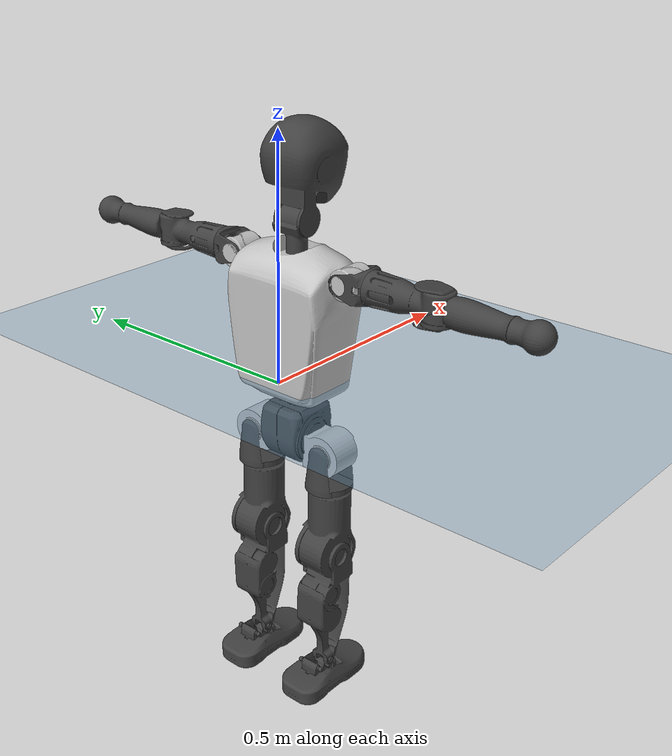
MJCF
<mujoco model="T1">
  <compiler angle="radian" assetdir="assets" balanceinertia="true" inertiafromgeom="false"/>

  <option timestep="0.005" density="1.2" viscosity="2e-05"/>

  <size nkey="1"/>

  <visual>
    <quality shadowsize="8192"/>
    <map shadowclip="0.5"/>
  </visual>

  <default>
    <default class="/">
      <joint armature="0.01" damping="0.01" frictionloss="0.1"/>
      <geom contype="0" conaffinity="0" group="1" solref="-1000 -80"/>
      <site size="0.01 0.005 0.005" group="5"/>
      <general forcelimited="true" biastype="affine" gainprm="25" biasprm="0 -25 -0.6"/>
      <default class="t1">
        <geom rgba="0.25 0.25 0.25 1"/>
        <default class="visual">
          <geom type="mesh" group="2"/>
        </default>
        <default class="collision">
          <geom group="3"/>
        </default>
        <default class="foot">
          <geom size="0.1115 0.05 0.015" type="box" condim="6" group="4" priority="1" solimp="0.015 1 0.015"/>
        </default>
        <default class="reward_collision_sphere">
          <geom group="5" rgba="1 0 0 1"/>
        </default>
      </default>
    </default>
  </default>

  <asset>
    <texture type="skybox" colorspace="auto" name="//unnamed_texture_0" builtin="gradient" rgb1="0.95 0.95 0.95" rgb2="0.95 0.95 0.95" width="100" height="600"/>
    <texture type="2d" colorspace="auto" name="texplane" builtin="checker" rgb1="0.345 0.575 0.748" rgb2="0.345 0.575 0.748" markrgb="1 1 1" width="512" height="512"/>
    <material name="MatPlane" class="/" texture="texplane" texuniform="true" texrepeat="2 2" specular="0.9"/>
    <mesh name="Trunk" class="/" file="Trunk.stl"/>
    <mesh name="H1" class="/" file="H1.stl"/>
    <mesh name="H2" class="/" file="H2.stl"/>
    <mesh name="AL1" class="/" file="AL1.stl"/>
    <mesh name="AL2" class="/" file="AL2.stl"/>
    <mesh name="AL3" class="/" file="AL3.stl"/>
    <mesh name="left_hand_link" class="/" file="left_hand_link.stl"/>
    <mesh name="AR1" class="/" file="AR1.stl"/>
    <mesh name="AR2" class="/" file="AR2.stl"/>
    <mesh name="AR3" class="/" file="AR3.stl"/>
    <mesh name="right_hand_link" class="/" file="right_hand_link.stl"/>
    <mesh name="Waist" class="/" file="Waist.stl"/>
    <mesh name="Hip_Pitch_Left" class="/" file="Hip_Pitch_Left.stl"/>
    <mesh name="Hip_Roll_Left" class="/" file="Hip_Roll_Left.stl"/>
    <mesh name="Hip_Yaw_Left" class="/" file="Hip_Yaw_Left.stl"/>
    <mesh name="Shank_Left" class="/" file="Shank_Left.stl"/>
    <mesh name="Ankle_Cross_Left" class="/" file="Ankle_Cross_Left.stl"/>
    <mesh name="left_foot_link" class="/" file="left_foot_link.stl"/>
    <mesh name="Hip_Pitch_Right" class="/" file="Hip_Pitch_Right.stl"/>
    <mesh name="Hip_Roll_Right" class="/" file="Hip_Roll_Right.stl"/>
    <mesh name="Hip_Yaw_Right" class="/" file="Hip_Yaw_Right.stl"/>
    <mesh name="Shank_Right" class="/" file="Shank_Right.stl"/>
    <mesh name="Ankle_Cross_Right" class="/" file="Ankle_Cross_Right.stl"/>
    <mesh name="right_foot_link" class="/" file="right_foot_link.stl"/>
  </asset>

  <worldbody>
    <geom name="floor" class="/" size="100 100 0.125" type="plane" group="0" material="MatPlane"/>
    <light name="toplight_shadow" class="/" pos="0 0 5" dir="0.0990148 0.0990148 -0.990148" type="directional" ambient="0.04 0.04 0.04" diffuse="0.55 0.55 0.55" specular="0.12 0.12 0.12"/>
    <light name="toplight_fill" class="/" pos="0 0 5" dir="0.0990148 0.0990148 -0.990148" type="directional" castshadow="false" ambient="0.04 0.04 0.04" diffuse="0.3 0.3 0.3" specular="0.08 0.08 0.08"/>
    <body name="trunk" childclass="t1" pos="0.000208829 0.000710386 -0.000668949" quat="1 9.76132e-05 -0.000334802 -0.000168667">
      <inertial pos="0.0462731 -0.000513781 0.111478" quat="0.999947 0.000401964 -0.0102976 0.000328532" mass="9.37827" diaginertia="0.0389227 0.0395339 0.0760001"/>
      <joint name="//unnamed_joint_0" type="free" armature="0" damping="0" frictionloss="0"/>
      <geom name="//unnamed_geom_1" class="visual" rgba="0.76 0.76 0.76 1" mesh="Trunk"/>
      <geom name="//unnamed_geom_2" class="collision" size="0.0695467 0.092729 0.139093" pos="0.0505535 0 0.127677" type="box"/>
      <geom name="//unnamed_geom_3" class="reward_collision_sphere" size="0.106638" pos="0.0505535 0 0.106397"/>
      <geom name="//unnamed_geom_4" class="reward_collision_sphere" size="0.0139093" pos="0.0505535 0.0744039 0"/>
      <geom name="//unnamed_geom_5" class="reward_collision_sphere" size="0.0139093" pos="0.0505535 -0.0744039 0"/>
      <geom name="//unnamed_geom_6" class="reward_collision_sphere" size="0.0139093" pos="0.0505535 0.0936614 0.191515"/>
      <geom name="//unnamed_geom_7" class="reward_collision_sphere" size="0.0139093" pos="0.0505535 -0.0936614 0.191515"/>
      <site name="imu" pos="0.00423027 0.00168947 -0.000495673" size="0.0092729"/>
      <camera name="track" pos="0 -1.75068 0" quat="0.707107 0.707107 0 0" mode="trackcom"/>
      <camera name="ego_camera" pos="0.102792 0 0.446868" quat="-0.5 -0.5 0.5 0.5"/>
      <body name="H1" pos="0.052482 -0.000446559 0.258344" quat="1 -0.000265557 0.000188962 6.71399e-05">
        <inertial pos="-0.00147411 -0.00158408 0.0602798" quat="0.762581 -0.0137863 0.000674755 0.646746" mass="0.357378" diaginertia="0.00010355 0.0001143 0.000207662"/>
        <joint name="AAHead_yaw" pos="0 0 0" axis="0.00144396 0.000617056 0.999999" range="-1.55331 1.57632" armature="0.00897351" damping="0.00851343" frictionloss="0.0966659"/>
        <geom name="//unnamed_geom_8" class="visual" mesh="H1"/>
        <body name="H2" pos="-0.00118495 -0.000491012 0.0658847" quat="1 -8.48286e-06 6.10365e-05 -2.27744e-05">
          <inertial pos="0.00578465 0.000441975 0.105046" quat="0.988614 0.105874 -0.0724881 -0.0786001" mass="0.508265" diaginertia="0.000870253 0.000992917 0.00236724"/>
          <joint name="Head_pitch" pos="0 0 0" axis="-0.00324327 -0.999995 -0.000323124" range="-1.22761 0.338643" armature="0.00944518" damping="0.00623505" frictionloss="0.0928821"/>
          <geom name="//unnamed_geom_9" class="visual" mesh="H2"/>
          <geom name="//unnamed_geom_10" class="collision" size="0.0741832" pos="0.00842558 0 0.117037"/>
          <geom name="//unnamed_geom_11" class="reward_collision_sphere" size="0.0834561" pos="0.0168512 0 0.106397"/>
        </body>
      </body>
      <body name="AL1" pos="0.0489288 0.0940913 0.233532" quat="1 -0.000140586 0.00060994 -0.000178966">
        <inertial pos="-0.000664544 0.0395608 -0.000265942" quat="0.504383 0.495652 -0.503881 0.496015" mass="0.426564" diaginertia="0.000585128 0.000672735 0.000401135"/>
        <joint name="Left_Shoulder_Pitch" pos="0 0 0" axis="0.000190162 1 5.34206e-05" range="-3.30695 1.22271" armature="0.00906303" damping="0.0056883" frictionloss="0.092935"/>
        <geom name="//unnamed_geom_12" class="visual" rgba="0.76 0.76 0.76 1" mesh="AL1"/>
        <body name="AL2" pos="0.00124191 0.0423519 0.000838845" quat="1 -0.000112678 0.000140066 -0.000252928">
          <inertial pos="0.00279325 0.0326268 -0.000240069" quat="0.488162 0.511393 -0.488166 0.511731" mass="0.12887" diaginertia="0.000170133 0.000179107 0.000242911"/>
          <joint name="Left_Shoulder_Roll" pos="0 0 0" axis="-0.999998 0.000764198 -0.00172564" range="-1.5775 1.73203" armature="0.00936197" damping="0.00443771" frictionloss="0.0913959"/>
          <geom name="//unnamed_geom_13" class="visual" mesh="AL2"/>
          <body name="AL3" pos="2.09659e-05 0.0537729 5.587e-05" quat="1 5.00079e-05 -8.89143e-05 -6.57625e-05">
            <inertial pos="-0.000427058 0.0752849 -0.000259061" quat="0.705396 0.708805 0.00218746 -0.0026484" mass="0.825632" diaginertia="0.00551769 0.00658389 0.000849809"/>
            <joint name="Left_Elbow_Pitch" pos="0 0 0" axis="-0.00288674 -0.999991 -0.00297019" range="-2.26248 2.26509" armature="0.00921991" damping="0.00491918" frictionloss="0.0889841"/>
            <geom name="//unnamed_geom_14" class="visual" mesh="AL3"/>
            <geom name="//unnamed_geom_15" class="collision" size="0.0278187 0.0695467" pos="0 0.043767 0" quat="0.707105 0.707108 0 0" type="cylinder"/>
            <geom name="//unnamed_geom_16" class="reward_collision_sphere" size="0.0333824"/>
            <body name="left_hand_link" pos="-0.000183422 0.129229 0.000652193" quat="1 -0.000345376 1.0991e-05 -0.000318867">
              <inertial pos="-5.669e-05 0.0962995 0.00107624" quat="0.707844 0.706369 -9.4727e-05 -0.000197699" mass="0.258662" diaginertia="0.00344545 0.00416885 0.000294944"/>
              <joint name="Left_Elbow_Yaw" pos="0 0 0" axis="0.00107596 0.00168614 0.999998" range="-2.4457 0.00585397" armature="0.0090957" damping="0.0114427" frictionloss="0.0891191"/>
              <geom name="//unnamed_geom_17" class="visual" mesh="left_hand_link"/>
              <geom name="//unnamed_geom_18" class="collision" size="0.0278187 0.0811379" pos="0 0.113794 0" quat="0.707105 0.707108 0 0" type="cylinder"/>
              <geom name="//unnamed_geom_19" class="reward_collision_sphere" size="0.0463645"/>
              <geom name="//unnamed_geom_20" class="reward_collision_sphere" size="0.0324551" pos="0 0.0962874 0"/>
              <geom name="//unnamed_geom_21" class="reward_collision_sphere" size="0.0324551" pos="0 0.188198 0"/>
            </body>
          </body>
        </body>
      </body>
      <body name="AR1" pos="0.0477732 -0.0923289 0.232845" quat="1 -3.09287e-05 0.000538889 -0.000209629">
        <inertial pos="-0.00110997 -0.0393945 -0.000253202" quat="0.504198 0.495488 -0.504404 0.495836" mass="0.422692" diaginertia="0.000589461 0.000668092 0.000397414"/>
        <joint name="Right_Shoulder_Pitch" pos="0 0 0" axis="-0.00250901 -0.999995 0.00168287" stiffness="0.000573176" range="-1.23396 3.30885" armature="0.00964718" damping="0.00673905" frictionloss="0.0948351"/>
        <geom name="//unnamed_geom_22" class="visual" rgba="0.76 0.76 0.76 1" mesh="AR1"/>
        <body name="AR2" pos="-0.000905741 -0.0411537 -0.00016855" quat="1 -3.7499e-05 -3.37683e-05 8.07412e-05">
          <inertial pos="0.00324894 -0.0332266 0.000529214" quat="0.512164 0.489894 -0.512309 0.485007" mass="0.127192" diaginertia="0.000172978 0.000178395 0.000243579"/>
          <joint name="Right_Shoulder_Roll" pos="0 0 0" axis="-0.999987 -0.00325979 0.00388257" range="-1.74679 1.56472" armature="0.00931283" damping="0.00647883" frictionloss="0.0931106"/>
          <geom name="//unnamed_geom_23" class="visual" mesh="AR2"/>
          <body name="AR3" pos="-0.00116803 -0.0530396 0.000701566" quat="1 -2.35042e-06 -2.0127e-05 -1.60349e-05">
            <inertial pos="-0.000437352 -0.074095 -1.68785e-05" quat="0.707726 0.706487 0.000234424 0.000127044" mass="0.811298" diaginertia="0.00548017 0.00651559 0.000840255"/>
            <joint name="Right_Elbow_Pitch" pos="0 0 0" axis="-0.000116865 1 0.000411414" range="-2.26871 2.26723" armature="0.00921149" damping="0.00888496" frictionloss="0.0937857"/>
            <geom name="//unnamed_geom_24" class="visual" mesh="AR3"/>
            <geom name="//unnamed_geom_25" class="collision" size="0.0278187 0.0695467" pos="0 -0.043767 0" quat="0.707105 0.707108 0 0" type="cylinder"/>
            <geom name="//unnamed_geom_26" class="reward_collision_sphere" size="0.0333824"/>
            <body name="right_hand_link" pos="-0.000198982 -0.128832 -0.00036318" quat="1 0.000261934 -0.000166579 2.50786e-05">
              <inertial pos="-0.000861772 -0.0955609 0.000685914" quat="0.706571 0.707642 0.000703703 0.000889986" mass="0.263286" diaginertia="0.0034754 0.00417614 0.000290237"/>
              <joint name="Right_Elbow_Yaw" pos="0 0 0" axis="0.00185009 -0.00437987 0.999989" range="0.00335761 2.44275" armature="0.00911887" damping="0.00700827" frictionloss="0.0945403"/>
              <geom name="//unnamed_geom_27" class="visual" mesh="right_hand_link"/>
              <geom name="//unnamed_geom_28" class="collision" size="0.0278187 0.0811379" pos="0 -0.113794 0" quat="0.707105 0.707108 0 0" type="cylinder"/>
              <geom name="//unnamed_geom_29" class="reward_collision_sphere" size="0.0463645"/>
              <geom name="//unnamed_geom_30" class="reward_collision_sphere" size="0.0324551" pos="0 -0.0962874 0"/>
              <geom name="//unnamed_geom_31" class="reward_collision_sphere" size="0.0324551" pos="0 -0.188198 0"/>
            </body>
          </body>
        </body>
      </body>
      <body name="Waist" pos="0.0527664 -0.000781315 -0.122438" quat="1 0.000233185 5.20047e-05 0.000256429">
        <inertial pos="0.00229061 -0.000464288 0.00713329" quat="0.984052 -0.00195679 -0.177842 0.0032315" mass="2.0811" diaginertia="0.00230059 0.00273372 0.006481"/>
        <joint name="Waist" pos="0 0 0" axis="0.000323922 -0.00221158 0.999998" range="-1.5723 1.57724" armature="0.00927715" damping="0.00980944" frictionloss="0.095371"/>
        <geom name="//unnamed_geom_32" class="visual" mesh="Waist"/>
        <body name="Hip_Pitch_Left" pos="-0.000266222 0.0925174 0.000353374" quat="1 -0.000242391 -0.000138316 -2.70297e-05">
          <inertial pos="0.00108142 -0.00709731 -0.0192094" quat="0.975015 0.221598 0.0154129 0.00147401" mass="0.804604" diaginertia="0.000763498 0.000751178 0.00170502"/>
          <joint name="Left_Hip_Pitch" pos="0 0 0" axis="0.0011879 0.999999 -0.000825572" range="-1.79869 1.56618" armature="0.00939945" damping="0.00690553" frictionloss="0.0911786"/>
          <geom name="//unnamed_geom_33" class="visual" rgba="0.76 0.76 0.76 1" mesh="Hip_Pitch_Left"/>
          <body name="Hip_Roll_Left" pos="-0.000264152 0.000326501 -0.0217465" quat="1 0.000214641 6.77873e-05 -0.000272684">
            <inertial pos="0.00195719 -0.000619468 -0.0572797" quat="0.709051 -0.00902914 -0.00488938 0.705083" mass="0.305404" diaginertia="0.000735763 0.00078025 0.000695829"/>
            <joint name="Left_Hip_Roll" pos="0 0 0" axis="-0.999999 0.0015795 -0.000638827" stiffness="0.00163583" range="-1.57355 0.195534" armature="0.00917236" damping="0.0103077" frictionloss="0.096705"/>
            <geom name="//unnamed_geom_34" class="visual" mesh="Hip_Roll_Left"/>
            <geom name="//unnamed_geom_35" class="reward_collision_sphere" size="0.0510009"/>
            <body name="Hip_Yaw_Left" pos="0.00156802 -0.000844502 -0.088279" quat="1 4.3687e-06 -1.30913e-05 3.76802e-06">
              <inertial pos="-0.00560409 -0.000503039 -0.0950423" quat="0.696948 -0.0337679 -0.0315818 0.71563" mass="1.75548" diaginertia="0.0109908 0.013142 0.00355851"/>
              <joint name="Left_Hip_Yaw" pos="0 0 0" axis="-0.0012646 0.00337915 -0.999993" stiffness="0.00161769" range="-1.01449 1.02116" armature="0.00939888" damping="0.00877034" frictionloss="0.0935413"/>
              <geom name="//unnamed_geom_36" class="visual" mesh="Hip_Yaw_Left"/>
              <geom name="//unnamed_geom_37" class="collision" size="0.0463645 0.0741832" type="cylinder"/>
              <body name="Shank_Left" pos="-0.0120481 3.28423e-05 -0.142529" quat="1 -1.16308e-06 7.94661e-07 -3.69814e-05">
                <inertial pos="-0.00467089 0.00047931 -0.132351" quat="0.997573 0.00130864 -0.0240003 0.0653487" mass="1.38357" diaginertia="0.0148572 0.0177449 0.00255311"/>
                <joint name="Left_Knee_Pitch" pos="0 0 0" axis="0.00114978 0.999997 -0.0020091" range="-0.0142507 2.34134" armature="0.00934108" damping="0.00547534" frictionloss="0.0961126"/>
                <geom name="//unnamed_geom_38" class="visual" mesh="Shank_Left"/>
                <geom name="//unnamed_geom_39" class="collision" size="0.0463645 0.0695467" pos="0 0 -0.127677" type="cylinder"/>
                <geom name="//unnamed_geom_40" class="reward_collision_sphere" size="0.0602738"/>
                <body name="Ankle_Cross_Left" pos="0.000198023 0.000394551 -0.297195" quat="1 2.46203e-05 6.45805e-05 1.1397e-05">
                  <inertial pos="-0.00273207 0.000347363 -0.00930721" quat="0.444001 0.550548 0.551805 0.441895" mass="0.0583901" diaginertia="1.2106e-05 1.30368e-05 1.53509e-05"/>
                  <joint name="Left_Ankle_Pitch" pos="0 0 0" axis="-0.00101059 0.999999 0.000840405" range="-0.868877 0.339519" armature="0.00926068" damping="0.00560072" frictionloss="0.0950367"/>
                  <geom name="//unnamed_geom_41" class="visual" mesh="Ankle_Cross_Left"/>
                  <body name="left_foot_link" pos="-0.000324852 -0.000816692 -0.0130988" quat="1 0.000110355 0.000145086 6.08938e-05">
                    <inertial pos="-0.000388359 0.000367461 -0.00955951" quat="0.000612846 0.620527 -0.00329614 0.784178" mass="0.544862" diaginertia="0.00113761 0.00121929 0.00299363"/>
                    <joint name="Left_Ankle_Roll" pos="0 0 0" axis="-0.999993 -0.00345678 0.00162447" range="-0.444836 0.45378" armature="0.00929427" damping="0.0113055" frictionloss="0.0926931"/>
                    <geom name="//unnamed_geom_42" class="visual" mesh="left_foot_link"/>
                    <geom name="left_foot" class="foot" size="0.101693 0.0474968 0.0139548" pos="0.00842558 0 -0.0159596"/>
                    <geom name="//unnamed_geom_44" class="reward_collision_sphere" size="0.0482191" pos="0.00842558 0 -0.0159596"/>
                    <geom name="//unnamed_geom_45" class="reward_collision_sphere" size="0.0278187" pos="0.0800431 -0.0201328 -0.0159596"/>
                    <geom name="//unnamed_geom_46" class="reward_collision_sphere" size="0.0278187" pos="-0.0589791 -0.0201328 -0.0159596"/>
                    <site name="left_foot" class="foot" pos="0.00842558 0 -0.0159596" size="0.0092729"/>
                  </body>
                </body>
              </body>
            </body>
          </body>
        </body>
        <body name="Hip_Pitch_Right" pos="0.000357383 -0.0925151 -0.000334787" quat="1 -5.64481e-05 -0.000187477 4.36295e-05">
          <inertial pos="0.00119708 0.006262 -0.0196796" quat="0.973713 -0.22731 0.0141665 -0.0035248" mass="0.80361" diaginertia="0.000757815 0.000741913 0.0016771"/>
          <joint name="Right_Hip_Pitch" pos="0 0 0" axis="-0.00160912 -0.999997 0.00160613" range="-1.57187 1.80431" armature="0.00941428" damping="0.0103072" frictionloss="0.0888258"/>
          <geom name="//unnamed_geom_47" class="visual" rgba="0.76 0.76 0.76 1" mesh="Hip_Pitch_Right"/>
          <body name="Hip_Roll_Right" pos="-0.000614871 -0.000408486 -0.0206981" quat="1 -4.57635e-05 0.00019968 0.000110313">
            <inertial pos="0.00174889 0.000545699 -0.0563785" quat="0.708339 -0.00632529 -0.00350321 0.705835" mass="0.305571" diaginertia="0.000738966 0.000780378 0.000704291"/>
            <joint name="Right_Hip_Roll" pos="0 0 0" axis="-0.999995 0.000455343 -0.00318824" stiffness="0.000916716" range="-0.184884 1.56071" armature="0.00895519" damping="0.005384" frictionloss="0.0956734"/>
            <geom name="//unnamed_geom_48" class="visual" mesh="Hip_Roll_Right"/>
            <geom name="//unnamed_geom_49" class="reward_collision_sphere" size="0.0510009"/>
            <body name="Hip_Yaw_Right" pos="0.00064185 0.000225649 -0.0872677" quat="1 0.000118539 5.34954e-06 -4.60853e-05">
              <inertial pos="-0.00559732 8.86553e-05 -0.0949268" quat="0.713117 -0.0313385 -0.0331586 0.699559" mass="1.73431" diaginertia="0.0110211 0.0128988 0.00355014"/>
              <joint name="Right_Hip_Yaw" pos="0 0 0" axis="-0.00147911 -0.00150988 -0.999998" range="-1.01214 0.999473" armature="0.00915589" damping="0.0120305" frictionloss="0.0908245"/>
              <geom name="//unnamed_geom_50" class="visual" mesh="Hip_Yaw_Right"/>
              <geom name="//unnamed_geom_51" class="collision" size="0.0463645 0.0741832" type="cylinder"/>
              <body name="Shank_Right" pos="-0.0113592 -5.74383e-05 -0.142355" quat="1 1.61915e-06 -1.46047e-05 -3.07767e-06">
                <inertial pos="-0.0051474 0.00053814 -0.130336" quat="0.999345 0.00193488 -0.0201968 -0.0299628" mass="1.43106" diaginertia="0.0151087 0.0180197 0.00271337"/>
                <joint name="Right_Knee_Pitch" pos="0 0 0" axis="-0.000434608 -0.999986 0.0052479" range="-2.34112 -0.00694143" armature="0.00950101" damping="0.00551299" frictionloss="0.0904298"/>
                <geom name="//unnamed_geom_52" class="visual" mesh="Shank_Right"/>
                <geom name="//unnamed_geom_53" class="collision" size="0.0463645 0.0695467" pos="0 0 -0.127677" type="cylinder"/>
                <geom name="//unnamed_geom_54" class="reward_collision_sphere" size="0.0602738"/>
                <body name="Ankle_Cross_Right" pos="-0.000547539 -0.000548816 -0.297392" quat="1 0.000190169 -0.000170789 8.61337e-05">
                  <inertial pos="-0.00280509 -0.000456982 -0.00836704" quat="0.445296 0.550899 0.548943 0.443716" mass="0.0588064" diaginertia="1.21927e-05 1.32093e-05 1.56201e-05"/>
                  <joint name="Right_Ankle_Pitch" pos="0 0 0" axis="0.00261334 -0.999995 -0.00194289" range="-0.351949 0.865352" armature="0.00944819" damping="0.0055389" frictionloss="0.0941085"/>
                  <geom name="//unnamed_geom_55" class="visual" mesh="Ankle_Cross_Right"/>
                  <body name="right_foot_link" pos="0.000172284 -0.00022197 -0.0136486" quat="1 -5.41573e-05 4.04589e-05 2.58818e-05">
                    <inertial pos="0.000151686 -0.000124679 -0.0105638" quat="0.00330552 0.620786 0.00214945 0.78397" mass="0.544012" diaginertia="0.00115298 0.00122948 0.00300155"/>
                    <joint name="Right_Ankle_Roll" pos="0 0 0" axis="-0.999999 0.00125307 -0.000277505" range="-0.440977 0.439677" armature="0.00929248" damping="0.0082987" frictionloss="0.0930842"/>
                    <geom name="//unnamed_geom_56" class="visual" mesh="right_foot_link"/>
                    <geom name="right_foot" class="foot" size="0.100335 0.0468589 0.0144898" pos="0.00842558 0 -0.0159596"/>
                    <geom name="//unnamed_geom_58" class="reward_collision_sphere" size="0.0370916"/>
                    <geom name="//unnamed_geom_59" class="reward_collision_sphere" size="0.0278187" pos="0.00842558 0 -0.0159596"/>
                    <geom name="//unnamed_geom_60" class="reward_collision_sphere" size="0.0278187" pos="0.0800431 0.0201328 -0.0159596"/>
                    <geom name="//unnamed_geom_61" class="reward_collision_sphere" size="0.0278187" pos="-0.0589791 0.0201328 -0.0159596"/>
                    <site name="right_foot" class="foot" pos="0.00842558 0 -0.0159596" size="0.0092729"/>
                  </body>
                </body>
              </body>
            </body>
          </body>
        </body>
      </body>
    </body>
  </worldbody>

  <contact>
    <pair class="/" geom1="floor" geom2="left_foot" name="//unnamed_contact_0"/>
    <pair class="/" geom1="floor" geom2="right_foot" name="//unnamed_contact_1"/>
  </contact>

  <actuator>
    <general name="AAHead_yaw" class="/" joint="AAHead_yaw" forcerange="-6.5981 6.5981" gainprm="22.936" biasprm="0 -22.936 -0.554523"/>
    <general name="Head_pitch" class="/" joint="Head_pitch" forcerange="-6.48407 6.48407" gainprm="22.936" biasprm="0 -22.936 -0.554523"/>
    <general name="Left_Shoulder_Pitch" class="/" joint="Left_Shoulder_Pitch" forcerange="-16.7153 16.7153" gainprm="22.936" biasprm="0 -22.936 -0.554523"/>
    <general name="Left_Shoulder_Roll" class="/" joint="Left_Shoulder_Roll" forcerange="-16.6682 16.6682" gainprm="22.936" biasprm="0 -22.936 -0.554523"/>
    <general name="Left_Elbow_Pitch" class="/" joint="Left_Elbow_Pitch" forcerange="-16.2834 16.2834" gainprm="22.936" biasprm="0 -22.936 -0.554523"/>
    <general name="Left_Elbow_Yaw" class="/" joint="Left_Elbow_Yaw" forcerange="-17.0519 17.0519" gainprm="22.936" biasprm="0 -22.936 -0.554523"/>
    <general name="Right_Shoulder_Pitch" class="/" joint="Right_Shoulder_Pitch" forcerange="-16.7702 16.7702" gainprm="22.936" biasprm="0 -22.936 -0.554523"/>
    <general name="Right_Shoulder_Roll" class="/" joint="Right_Shoulder_Roll" forcerange="-16.2172 16.2172" gainprm="22.936" biasprm="0 -22.936 -0.554523"/>
    <general name="Right_Elbow_Pitch" class="/" joint="Right_Elbow_Pitch" forcerange="-16.2156 16.2156" gainprm="22.936" biasprm="0 -22.936 -0.554523"/>
    <general name="Right_Elbow_Yaw" class="/" joint="Right_Elbow_Yaw" forcerange="-17.1103 17.1103" gainprm="22.936" biasprm="0 -22.936 -0.554523"/>
    <general name="Waist" class="/" joint="Waist" forcerange="-27.9293 27.9293" gainprm="22.936" biasprm="0 -22.936 -0.554523"/>
    <general name="Left_Hip_Pitch" class="/" joint="Left_Hip_Pitch" forcerange="-40.4125 40.4125" gainprm="22.936" biasprm="0 -22.936 -0.554523"/>
    <general name="Left_Hip_Roll" class="/" joint="Left_Hip_Roll" forcerange="-27.7521 27.7521" gainprm="22.936" biasprm="0 -22.936 -0.554523"/>
    <general name="Left_Hip_Yaw" class="/" joint="Left_Hip_Yaw" forcerange="-28.0881 28.0881" gainprm="22.936" biasprm="0 -22.936 -0.554523"/>
    <general name="Left_Knee_Pitch" class="/" joint="Left_Knee_Pitch" forcerange="-55.2075 55.2075" gainprm="22.936" biasprm="0 -22.936 -0.554523"/>
    <general name="Left_Ankle_Pitch" class="/" joint="Left_Ankle_Pitch" forcerange="-18.8398 18.8398" gainprm="22.936" biasprm="0 -22.936 -0.554523"/>
    <general name="Left_Ankle_Roll" class="/" joint="Left_Ankle_Roll" forcerange="-13.9086 13.9086" gainprm="22.936" biasprm="0 -22.936 -0.554523"/>
    <general name="Right_Hip_Pitch" class="/" joint="Right_Hip_Pitch" forcerange="-42.1909 42.1909" gainprm="22.936" biasprm="0 -22.936 -0.554523"/>
    <general name="Right_Hip_Roll" class="/" joint="Right_Hip_Roll" forcerange="-27.8129 27.8129" gainprm="22.936" biasprm="0 -22.936 -0.554523"/>
    <general name="Right_Hip_Yaw" class="/" joint="Right_Hip_Yaw" forcerange="-27.6592 27.6592" gainprm="22.936" biasprm="0 -22.936 -0.554523"/>
    <general name="Right_Knee_Pitch" class="/" joint="Right_Knee_Pitch" forcerange="-56.8179 56.8179" gainprm="22.936" biasprm="0 -22.936 -0.554523"/>
    <general name="Right_Ankle_Pitch" class="/" joint="Right_Ankle_Pitch" forcerange="-19.1067 19.1067" gainprm="22.936" biasprm="0 -22.936 -0.554523"/>
    <general name="Right_Ankle_Roll" class="/" joint="Right_Ankle_Roll" forcerange="-13.4932 13.4932" gainprm="22.936" biasprm="0 -22.936 -0.554523"/>
  </actuator>

  <sensor>
    <gyro site="imu" name="imu_angular_velocity"/>
    <velocimeter site="imu" name="imu_linear_velocity"/>
    <framelinvel objtype="site" objname="left_foot" name="left_foot_global_linear_velocity"/>
    <framelinvel objtype="site" objname="right_foot" name="right_foot_global_linear_velocity"/>
  </sensor>

  <keyframe>
    <key name="home" qpos="0 0 0.6385 1 0 0 0 0 0 0 1.4 0 -0.4 0 -1.4 0 0.4 0 -0.4 0 0 0.8 -0.4 0 0.4 0 0 -0.8 0.4 0"/>
  </keyframe>
</mujoco>
